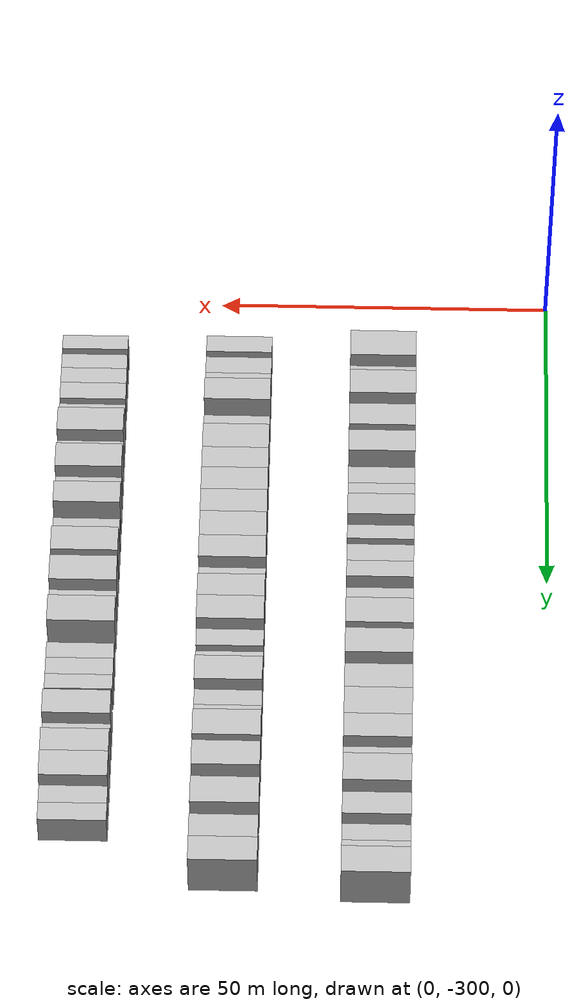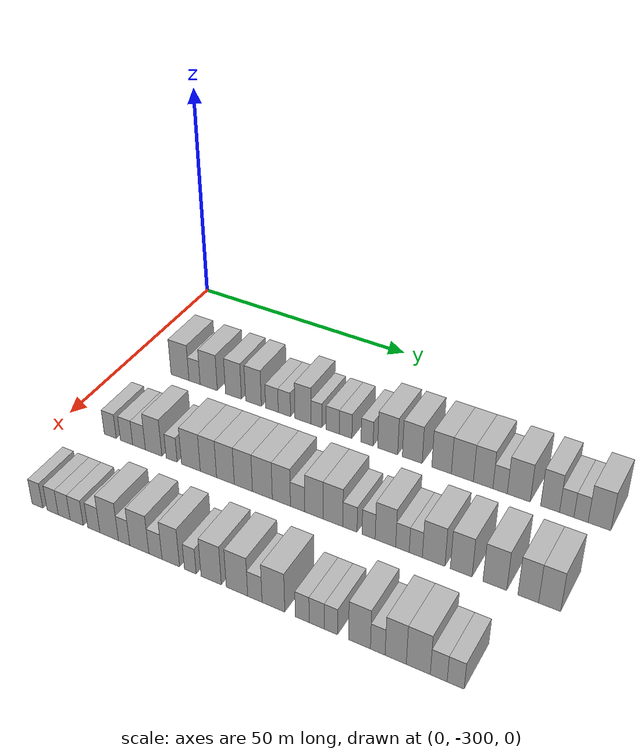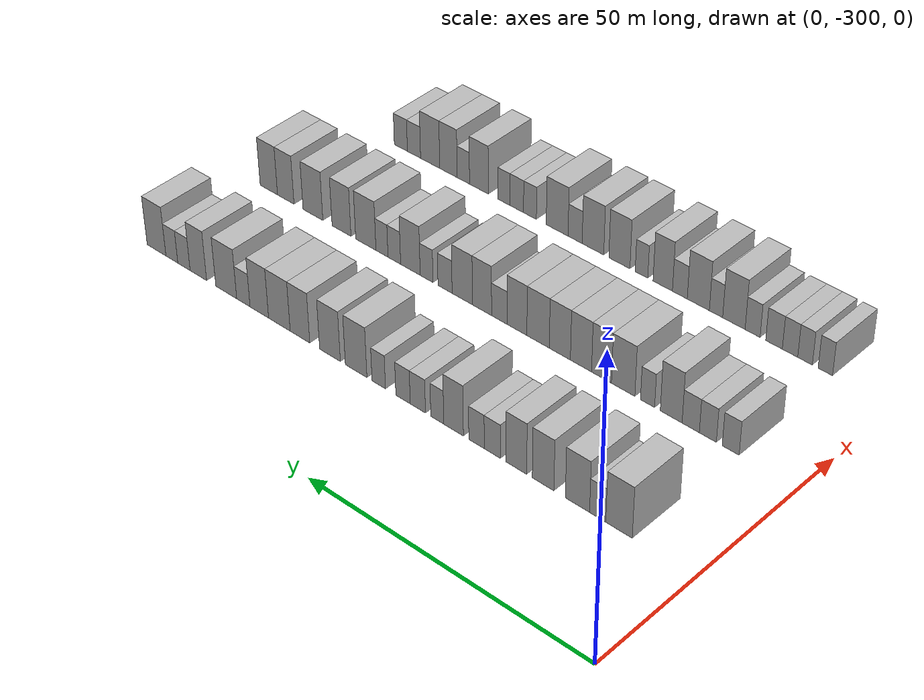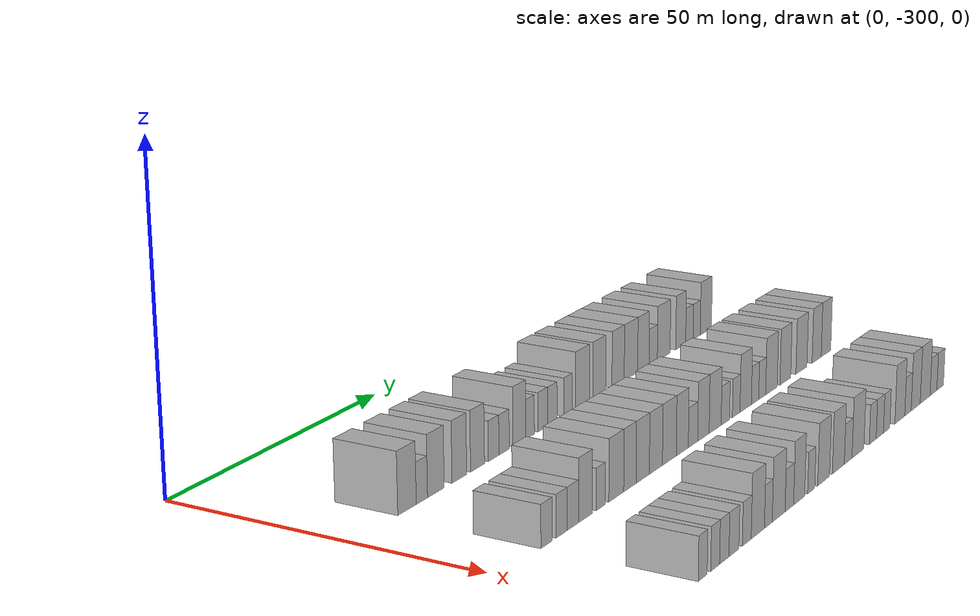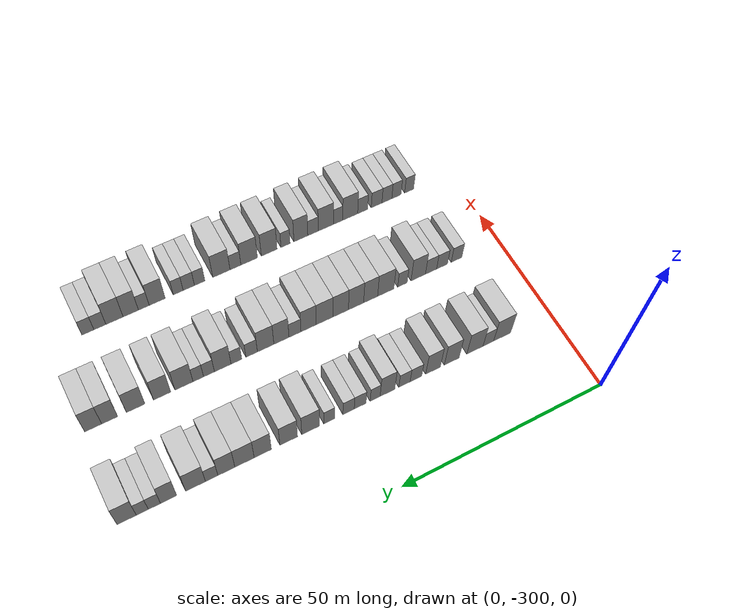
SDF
<sdf version="1.6">
 <world name="default">
  <model name="building_23">
   <static>1</static>
   <pose>25.0000 -287.2162 0 0.000000 0.000000 0.000000</pose>
   <link name="link">
    <pose>0 0 4.50 0 0 0</pose>
    <collision name="collision"><geometry><box><size>10.0000 4.4706 9.0000</size></box></geometry></collision>
    <visual name="visual">
     <cast_shadows>0</cast_shadows>
     <geometry><box><size>10.0000 4.4706 9.0000</size></box></geometry>
     <material>
      <script>
       <uri>model://HANNAS_wall/materials/scripts</uri>
       <uri>model://HANNAS_wall/materials/textures</uri>
       <name>vrc/HANNAS_wall</name>
      </script>
     </material>
    </visual>
   </link>
  </model>
  <model name="building_24">
   <static>1</static>
   <pose>25.0000 -283.5953 0 0.000000 0.000000 0.000000</pose>
   <link name="link">
    <pose>0 0 3.00 0 0 0</pose>
    <collision name="collision"><geometry><box><size>10.0000 2.7713 6.0000</size></box></geometry></collision>
    <visual name="visual">
     <cast_shadows>0</cast_shadows>
     <geometry><box><size>10.0000 2.7713 6.0000</size></box></geometry>
     <material>
      <script>
       <uri>model://HANNAS_wall/materials/scripts</uri>
       <uri>model://HANNAS_wall/materials/textures</uri>
       <name>vrc/HANNAS_wall</name>
      </script>
     </material>
    </visual>
   </link>
  </model>
  <model name="building_25">
   <static>1</static>
   <pose>25.0000 -280.1155 0 0.000000 0.000000 0.000000</pose>
   <link name="link">
    <pose>0 0 4.50 0 0 0</pose>
    <collision name="collision"><geometry><box><size>10.0000 4.1884 9.0000</size></box></geometry></collision>
    <visual name="visual">
     <cast_shadows>0</cast_shadows>
     <geometry><box><size>10.0000 4.1884 9.0000</size></box></geometry>
     <material>
      <script>
       <uri>model://HANNAS_wall/materials/scripts</uri>
       <uri>model://HANNAS_wall/materials/textures</uri>
       <name>vrc/HANNAS_wall</name>
      </script>
     </material>
    </visual>
   </link>
  </model>
  <model name="building_26">
   <static>1</static>
   <pose>25.0000 -274.1162 0 0.000000 0.000000 0.000000</pose>
   <link name="link">
    <pose>0 0 4.50 0 0 0</pose>
    <collision name="collision"><geometry><box><size>10.0000 3.8103 9.0000</size></box></geometry></collision>
    <visual name="visual">
     <cast_shadows>0</cast_shadows>
     <geometry><box><size>10.0000 3.8103 9.0000</size></box></geometry>
     <material>
      <script>
       <uri>model://HANNAS_wall/materials/scripts</uri>
       <uri>model://HANNAS_wall/materials/textures</uri>
       <name>vrc/HANNAS_wall</name>
      </script>
     </material>
    </visual>
   </link>
  </model>
  <model name="building_27">
   <static>1</static>
   <pose>25.0000 -269.3501 0 0.000000 0.000000 0.000000</pose>
   <link name="link">
    <pose>0 0 4.50 0 0 0</pose>
    <collision name="collision"><geometry><box><size>10.0000 3.7218 9.0000</size></box></geometry></collision>
    <visual name="visual">
     <cast_shadows>0</cast_shadows>
     <geometry><box><size>10.0000 3.7218 9.0000</size></box></geometry>
     <material>
      <script>
       <uri>model://HANNAS_wall/materials/scripts</uri>
       <uri>model://HANNAS_wall/materials/textures</uri>
       <name>vrc/HANNAS_wall</name>
      </script>
     </material>
    </visual>
   </link>
  </model>
  <model name="building_28">
   <static>1</static>
   <pose>25.0000 -265.0193 0 0.000000 0.000000 0.000000</pose>
   <link name="link">
    <pose>0 0 3.00 0 0 0</pose>
    <collision name="collision"><geometry><box><size>10.0000 2.9399 6.0000</size></box></geometry></collision>
    <visual name="visual">
     <cast_shadows>0</cast_shadows>
     <geometry><box><size>10.0000 2.9399 6.0000</size></box></geometry>
     <material>
      <script>
       <uri>model://HANNAS_wall/materials/scripts</uri>
       <uri>model://HANNAS_wall/materials/textures</uri>
       <name>vrc/HANNAS_wall</name>
      </script>
     </material>
    </visual>
   </link>
  </model>
  <model name="building_29">
   <static>1</static>
   <pose>25.0000 -262.1309 0 0.000000 0.000000 0.000000</pose>
   <link name="link">
    <pose>0 0 3.00 0 0 0</pose>
    <collision name="collision"><geometry><box><size>10.0000 2.8371 6.0000</size></box></geometry></collision>
    <visual name="visual">
     <cast_shadows>0</cast_shadows>
     <geometry><box><size>10.0000 2.8371 6.0000</size></box></geometry>
     <material>
      <script>
       <uri>model://HANNAS_wall/materials/scripts</uri>
       <uri>model://HANNAS_wall/materials/textures</uri>
       <name>vrc/HANNAS_wall</name>
      </script>
     </material>
    </visual>
   </link>
  </model>
  <model name="building_30">
   <static>1</static>
   <pose>25.0000 -257.8858 0 0.000000 0.000000 0.000000</pose>
   <link name="link">
    <pose>0 0 4.50 0 0 0</pose>
    <collision name="collision"><geometry><box><size>10.0000 3.6531 9.0000</size></box></geometry></collision>
    <visual name="visual">
     <cast_shadows>0</cast_shadows>
     <geometry><box><size>10.0000 3.6531 9.0000</size></box></geometry>
     <material>
      <script>
       <uri>model://HANNAS_wall/materials/scripts</uri>
       <uri>model://HANNAS_wall/materials/textures</uri>
       <name>vrc/HANNAS_wall</name>
      </script>
     </material>
    </visual>
   </link>
  </model>
  <model name="building_31">
   <static>1</static>
   <pose>25.0000 -254.8350 0 0.000000 0.000000 0.000000</pose>
   <link name="link">
    <pose>0 0 3.00 0 0 0</pose>
    <collision name="collision"><geometry><box><size>10.0000 2.4486 6.0000</size></box></geometry></collision>
    <visual name="visual">
     <cast_shadows>0</cast_shadows>
     <geometry><box><size>10.0000 2.4486 6.0000</size></box></geometry>
     <material>
      <script>
       <uri>model://HANNAS_wall/materials/scripts</uri>
       <uri>model://HANNAS_wall/materials/textures</uri>
       <name>vrc/HANNAS_wall</name>
      </script>
     </material>
    </visual>
   </link>
  </model>
  <model name="building_32">
   <static>1</static>
   <pose>25.0000 -251.1613 0 0.000000 0.000000 0.000000</pose>
   <link name="link">
    <pose>0 0 3.00 0 0 0</pose>
    <collision name="collision"><geometry><box><size>10.0000 2.8987 6.0000</size></box></geometry></collision>
    <visual name="visual">
     <cast_shadows>0</cast_shadows>
     <geometry><box><size>10.0000 2.8987 6.0000</size></box></geometry>
     <material>
      <script>
       <uri>model://HANNAS_wall/materials/scripts</uri>
       <uri>model://HANNAS_wall/materials/textures</uri>
       <name>vrc/HANNAS_wall</name>
      </script>
     </material>
    </visual>
   </link>
  </model>
  <model name="building_33">
   <static>1</static>
   <pose>25.0000 -248.3260 0 0.000000 0.000000 0.000000</pose>
   <link name="link">
    <pose>0 0 3.00 0 0 0</pose>
    <collision name="collision"><geometry><box><size>10.0000 2.7719 6.0000</size></box></geometry></collision>
    <visual name="visual">
     <cast_shadows>0</cast_shadows>
     <geometry><box><size>10.0000 2.7719 6.0000</size></box></geometry>
     <material>
      <script>
       <uri>model://HANNAS_wall/materials/scripts</uri>
       <uri>model://HANNAS_wall/materials/textures</uri>
       <name>vrc/HANNAS_wall</name>
      </script>
     </material>
    </visual>
   </link>
  </model>
  <model name="building_34">
   <static>1</static>
   <pose>25.0000 -243.6265 0 0.000000 0.000000 0.000000</pose>
   <link name="link">
    <pose>0 0 3.00 0 0 0</pose>
    <collision name="collision"><geometry><box><size>10.0000 2.6273 6.0000</size></box></geometry></collision>
    <visual name="visual">
     <cast_shadows>0</cast_shadows>
     <geometry><box><size>10.0000 2.6273 6.0000</size></box></geometry>
     <material>
      <script>
       <uri>model://HANNAS_wall/materials/scripts</uri>
       <uri>model://HANNAS_wall/materials/textures</uri>
       <name>vrc/HANNAS_wall</name>
      </script>
     </material>
    </visual>
   </link>
  </model>
  <model name="building_35">
   <static>1</static>
   <pose>25.0000 -239.1774 0 0.000000 0.000000 0.000000</pose>
   <link name="link">
    <pose>0 0 4.50 0 0 0</pose>
    <collision name="collision"><geometry><box><size>10.0000 4.2708 9.0000</size></box></geometry></collision>
    <visual name="visual">
     <cast_shadows>0</cast_shadows>
     <geometry><box><size>10.0000 4.2708 9.0000</size></box></geometry>
     <material>
      <script>
       <uri>model://HANNAS_wall/materials/scripts</uri>
       <uri>model://HANNAS_wall/materials/textures</uri>
       <name>vrc/HANNAS_wall</name>
      </script>
     </material>
    </visual>
   </link>
  </model>
  <model name="building_36">
   <static>1</static>
   <pose>25.0000 -233.9586 0 0.000000 0.000000 0.000000</pose>
   <link name="link">
    <pose>0 0 4.50 0 0 0</pose>
    <collision name="collision"><geometry><box><size>10.0000 4.1669 9.0000</size></box></geometry></collision>
    <visual name="visual">
     <cast_shadows>0</cast_shadows>
     <geometry><box><size>10.0000 4.1669 9.0000</size></box></geometry>
     <material>
      <script>
       <uri>model://HANNAS_wall/materials/scripts</uri>
       <uri>model://HANNAS_wall/materials/textures</uri>
       <name>vrc/HANNAS_wall</name>
      </script>
     </material>
    </visual>
   </link>
  </model>
  <model name="building_37">
   <static>1</static>
   <pose>25.0000 -227.8660 0 0.000000 0.000000 0.000000</pose>
   <link name="link">
    <pose>0 0 4.50 0 0 0</pose>
    <collision name="collision"><geometry><box><size>10.0000 4.0181 9.0000</size></box></geometry></collision>
    <visual name="visual">
     <cast_shadows>0</cast_shadows>
     <geometry><box><size>10.0000 4.0181 9.0000</size></box></geometry>
     <material>
      <script>
       <uri>model://HANNAS_wall/materials/scripts</uri>
       <uri>model://HANNAS_wall/materials/textures</uri>
       <name>vrc/HANNAS_wall</name>
      </script>
     </material>
    </visual>
   </link>
  </model>
  <model name="building_38">
   <static>1</static>
   <pose>25.0000 -223.6124 0 0.000000 0.000000 0.000000</pose>
   <link name="link">
    <pose>0 0 4.50 0 0 0</pose>
    <collision name="collision"><geometry><box><size>10.0000 4.4892 9.0000</size></box></geometry></collision>
    <visual name="visual">
     <cast_shadows>0</cast_shadows>
     <geometry><box><size>10.0000 4.4892 9.0000</size></box></geometry>
     <material>
      <script>
       <uri>model://HANNAS_wall/materials/scripts</uri>
       <uri>model://HANNAS_wall/materials/textures</uri>
       <name>vrc/HANNAS_wall</name>
      </script>
     </material>
    </visual>
   </link>
  </model>
  <model name="building_39">
   <static>1</static>
   <pose>25.0000 -219.4153 0 0.000000 0.000000 0.000000</pose>
   <link name="link">
    <pose>0 0 4.50 0 0 0</pose>
    <collision name="collision"><geometry><box><size>10.0000 3.9049 9.0000</size></box></geometry></collision>
    <visual name="visual">
     <cast_shadows>0</cast_shadows>
     <geometry><box><size>10.0000 3.9049 9.0000</size></box></geometry>
     <material>
      <script>
       <uri>model://HANNAS_wall/materials/scripts</uri>
       <uri>model://HANNAS_wall/materials/textures</uri>
       <name>vrc/HANNAS_wall</name>
      </script>
     </material>
    </visual>
   </link>
  </model>
  <model name="building_40">
   <static>1</static>
   <pose>25.0000 -216.0444 0 0.000000 0.000000 0.000000</pose>
   <link name="link">
    <pose>0 0 3.00 0 0 0</pose>
    <collision name="collision"><geometry><box><size>10.0000 2.8369 6.0000</size></box></geometry></collision>
    <visual name="visual">
     <cast_shadows>0</cast_shadows>
     <geometry><box><size>10.0000 2.8369 6.0000</size></box></geometry>
     <material>
      <script>
       <uri>model://HANNAS_wall/materials/scripts</uri>
       <uri>model://HANNAS_wall/materials/textures</uri>
       <name>vrc/HANNAS_wall</name>
      </script>
     </material>
    </visual>
   </link>
  </model>
  <model name="building_41">
   <static>1</static>
   <pose>25.0000 -212.3795 0 0.000000 0.000000 0.000000</pose>
   <link name="link">
    <pose>0 0 4.50 0 0 0</pose>
    <collision name="collision"><geometry><box><size>10.0000 4.4929 9.0000</size></box></geometry></collision>
    <visual name="visual">
     <cast_shadows>0</cast_shadows>
     <geometry><box><size>10.0000 4.4929 9.0000</size></box></geometry>
     <material>
      <script>
       <uri>model://HANNAS_wall/materials/scripts</uri>
       <uri>model://HANNAS_wall/materials/textures</uri>
       <name>vrc/HANNAS_wall</name>
      </script>
     </material>
    </visual>
   </link>
  </model>
  <model name="building_42">
   <static>1</static>
   <pose>25.0000 -206.3270 0 0.000000 0.000000 0.000000</pose>
   <link name="link">
    <pose>0 0 4.50 0 0 0</pose>
    <collision name="collision"><geometry><box><size>10.0000 3.6121 9.0000</size></box></geometry></collision>
    <visual name="visual">
     <cast_shadows>0</cast_shadows>
     <geometry><box><size>10.0000 3.6121 9.0000</size></box></geometry>
     <material>
      <script>
       <uri>model://HANNAS_wall/materials/scripts</uri>
       <uri>model://HANNAS_wall/materials/textures</uri>
       <name>vrc/HANNAS_wall</name>
      </script>
     </material>
    </visual>
   </link>
  </model>
  <model name="building_43">
   <static>1</static>
   <pose>25.0000 -203.1630 0 0.000000 0.000000 0.000000</pose>
   <link name="link">
    <pose>0 0 3.00 0 0 0</pose>
    <collision name="collision"><geometry><box><size>10.0000 2.7160 6.0000</size></box></geometry></collision>
    <visual name="visual">
     <cast_shadows>0</cast_shadows>
     <geometry><box><size>10.0000 2.7160 6.0000</size></box></geometry>
     <material>
      <script>
       <uri>model://HANNAS_wall/materials/scripts</uri>
       <uri>model://HANNAS_wall/materials/textures</uri>
       <name>vrc/HANNAS_wall</name>
      </script>
     </material>
    </visual>
   </link>
  </model>
  <model name="building_44">
   <static>1</static>
   <pose>25.0000 -200.4754 0 0.000000 0.000000 0.000000</pose>
   <link name="link">
    <pose>0 0 3.00 0 0 0</pose>
    <collision name="collision"><geometry><box><size>10.0000 2.6592 6.0000</size></box></geometry></collision>
    <visual name="visual">
     <cast_shadows>0</cast_shadows>
     <geometry><box><size>10.0000 2.6592 6.0000</size></box></geometry>
     <material>
      <script>
       <uri>model://HANNAS_wall/materials/scripts</uri>
       <uri>model://HANNAS_wall/materials/textures</uri>
       <name>vrc/HANNAS_wall</name>
      </script>
     </material>
    </visual>
   </link>
  </model>
  <model name="building_45">
   <static>1</static>
   <pose>25.0000 -197.0374 0 0.000000 0.000000 0.000000</pose>
   <link name="link">
    <pose>0 0 4.50 0 0 0</pose>
    <collision name="collision"><geometry><box><size>10.0000 4.2169 9.0000</size></box></geometry></collision>
    <visual name="visual">
     <cast_shadows>0</cast_shadows>
     <geometry><box><size>10.0000 4.2169 9.0000</size></box></geometry>
     <material>
      <script>
       <uri>model://HANNAS_wall/materials/scripts</uri>
       <uri>model://HANNAS_wall/materials/textures</uri>
       <name>vrc/HANNAS_wall</name>
      </script>
     </material>
    </visual>
   </link>
  </model>
  <model name="building_207">
   <static>1</static>
   <pose>47.0000 -288.6306 0 0.000000 0.000000 0.000000</pose>
   <link name="link">
    <pose>0 0 3.00 0 0 0</pose>
    <collision name="collision"><geometry><box><size>10.0000 2.8771 6.0000</size></box></geometry></collision>
    <visual name="visual">
     <cast_shadows>0</cast_shadows>
     <geometry><box><size>10.0000 2.8771 6.0000</size></box></geometry>
     <material>
      <script>
       <uri>model://HANNAS_wall/materials/scripts</uri>
       <uri>model://HANNAS_wall/materials/textures</uri>
       <name>vrc/HANNAS_wall</name>
      </script>
     </material>
    </visual>
   </link>
  </model>
  <model name="building_208">
   <static>1</static>
   <pose>47.0000 -284.7223 0 0.000000 0.000000 0.000000</pose>
   <link name="link">
    <pose>0 0 3.00 0 0 0</pose>
    <collision name="collision"><geometry><box><size>10.0000 2.9393 6.0000</size></box></geometry></collision>
    <visual name="visual">
     <cast_shadows>0</cast_shadows>
     <geometry><box><size>10.0000 2.9393 6.0000</size></box></geometry>
     <material>
      <script>
       <uri>model://HANNAS_wall/materials/scripts</uri>
       <uri>model://HANNAS_wall/materials/textures</uri>
       <name>vrc/HANNAS_wall</name>
      </script>
     </material>
    </visual>
   </link>
  </model>
  <model name="building_209">
   <static>1</static>
   <pose>47.0000 -281.7558 0 0.000000 0.000000 0.000000</pose>
   <link name="link">
    <pose>0 0 3.00 0 0 0</pose>
    <collision name="collision"><geometry><box><size>10.0000 2.9937 6.0000</size></box></geometry></collision>
    <visual name="visual">
     <cast_shadows>0</cast_shadows>
     <geometry><box><size>10.0000 2.9937 6.0000</size></box></geometry>
     <material>
      <script>
       <uri>model://HANNAS_wall/materials/scripts</uri>
       <uri>model://HANNAS_wall/materials/textures</uri>
       <name>vrc/HANNAS_wall</name>
      </script>
     </material>
    </visual>
   </link>
  </model>
  <model name="building_210">
   <static>1</static>
   <pose>47.0000 -278.3389 0 0.000000 0.000000 0.000000</pose>
   <link name="link">
    <pose>0 0 4.50 0 0 0</pose>
    <collision name="collision"><geometry><box><size>10.0000 3.8402 9.0000</size></box></geometry></collision>
    <visual name="visual">
     <cast_shadows>0</cast_shadows>
     <geometry><box><size>10.0000 3.8402 9.0000</size></box></geometry>
     <material>
      <script>
       <uri>model://HANNAS_wall/materials/scripts</uri>
       <uri>model://HANNAS_wall/materials/textures</uri>
       <name>vrc/HANNAS_wall</name>
      </script>
     </material>
    </visual>
   </link>
  </model>
  <model name="building_211">
   <static>1</static>
   <pose>47.0000 -274.1575 0 0.000000 0.000000 0.000000</pose>
   <link name="link">
    <pose>0 0 3.00 0 0 0</pose>
    <collision name="collision"><geometry><box><size>10.0000 2.5226 6.0000</size></box></geometry></collision>
    <visual name="visual">
     <cast_shadows>0</cast_shadows>
     <geometry><box><size>10.0000 2.5226 6.0000</size></box></geometry>
     <material>
      <script>
       <uri>model://HANNAS_wall/materials/scripts</uri>
       <uri>model://HANNAS_wall/materials/textures</uri>
       <name>vrc/HANNAS_wall</name>
      </script>
     </material>
    </visual>
   </link>
  </model>
  <model name="building_212">
   <static>1</static>
   <pose>47.0000 -269.7729 0 0.000000 0.000000 0.000000</pose>
   <link name="link">
    <pose>0 0 4.50 0 0 0</pose>
    <collision name="collision"><geometry><box><size>10.0000 4.2466 9.0000</size></box></geometry></collision>
    <visual name="visual">
     <cast_shadows>0</cast_shadows>
     <geometry><box><size>10.0000 4.2466 9.0000</size></box></geometry>
     <material>
      <script>
       <uri>model://HANNAS_wall/materials/scripts</uri>
       <uri>model://HANNAS_wall/materials/textures</uri>
       <name>vrc/HANNAS_wall</name>
      </script>
     </material>
    </visual>
   </link>
  </model>
  <model name="building_213">
   <static>1</static>
   <pose>47.0000 -265.8318 0 0.000000 0.000000 0.000000</pose>
   <link name="link">
    <pose>0 0 4.50 0 0 0</pose>
    <collision name="collision"><geometry><box><size>10.0000 3.6357 9.0000</size></box></geometry></collision>
    <visual name="visual">
     <cast_shadows>0</cast_shadows>
     <geometry><box><size>10.0000 3.6357 9.0000</size></box></geometry>
     <material>
      <script>
       <uri>model://HANNAS_wall/materials/scripts</uri>
       <uri>model://HANNAS_wall/materials/textures</uri>
       <name>vrc/HANNAS_wall</name>
      </script>
     </material>
    </visual>
   </link>
  </model>
  <model name="building_214">
   <static>1</static>
   <pose>47.0000 -262.0541 0 0.000000 0.000000 0.000000</pose>
   <link name="link">
    <pose>0 0 4.50 0 0 0</pose>
    <collision name="collision"><geometry><box><size>10.0000 3.9198 9.0000</size></box></geometry></collision>
    <visual name="visual">
     <cast_shadows>0</cast_shadows>
     <geometry><box><size>10.0000 3.9198 9.0000</size></box></geometry>
     <material>
      <script>
       <uri>model://HANNAS_wall/materials/scripts</uri>
       <uri>model://HANNAS_wall/materials/textures</uri>
       <name>vrc/HANNAS_wall</name>
      </script>
     </material>
    </visual>
   </link>
  </model>
  <model name="building_215">
   <static>1</static>
   <pose>47.0000 -258.1147 0 0.000000 0.000000 0.000000</pose>
   <link name="link">
    <pose>0 0 4.50 0 0 0</pose>
    <collision name="collision"><geometry><box><size>10.0000 3.9590 9.0000</size></box></geometry></collision>
    <visual name="visual">
     <cast_shadows>0</cast_shadows>
     <geometry><box><size>10.0000 3.9590 9.0000</size></box></geometry>
     <material>
      <script>
       <uri>model://HANNAS_wall/materials/scripts</uri>
       <uri>model://HANNAS_wall/materials/textures</uri>
       <name>vrc/HANNAS_wall</name>
      </script>
     </material>
    </visual>
   </link>
  </model>
  <model name="building_216">
   <static>1</static>
   <pose>47.0000 -254.0021 0 0.000000 0.000000 0.000000</pose>
   <link name="link">
    <pose>0 0 4.50 0 0 0</pose>
    <collision name="collision"><geometry><box><size>10.0000 4.2663 9.0000</size></box></geometry></collision>
    <visual name="visual">
     <cast_shadows>0</cast_shadows>
     <geometry><box><size>10.0000 4.2663 9.0000</size></box></geometry>
     <material>
      <script>
       <uri>model://HANNAS_wall/materials/scripts</uri>
       <uri>model://HANNAS_wall/materials/textures</uri>
       <name>vrc/HANNAS_wall</name>
      </script>
     </material>
    </visual>
   </link>
  </model>
  <model name="building_217">
   <static>1</static>
   <pose>47.0000 -249.9526 0 0.000000 0.000000 0.000000</pose>
   <link name="link">
    <pose>0 0 4.50 0 0 0</pose>
    <collision name="collision"><geometry><box><size>10.0000 3.8326 9.0000</size></box></geometry></collision>
    <visual name="visual">
     <cast_shadows>0</cast_shadows>
     <geometry><box><size>10.0000 3.8326 9.0000</size></box></geometry>
     <material>
      <script>
       <uri>model://HANNAS_wall/materials/scripts</uri>
       <uri>model://HANNAS_wall/materials/textures</uri>
       <name>vrc/HANNAS_wall</name>
      </script>
     </material>
    </visual>
   </link>
  </model>
  <model name="building_218">
   <static>1</static>
   <pose>47.0000 -246.5391 0 0.000000 0.000000 0.000000</pose>
   <link name="link">
    <pose>0 0 3.00 0 0 0</pose>
    <collision name="collision"><geometry><box><size>10.0000 2.9944 6.0000</size></box></geometry></collision>
    <visual name="visual">
     <cast_shadows>0</cast_shadows>
     <geometry><box><size>10.0000 2.9944 6.0000</size></box></geometry>
     <material>
      <script>
       <uri>model://HANNAS_wall/materials/scripts</uri>
       <uri>model://HANNAS_wall/materials/textures</uri>
       <name>vrc/HANNAS_wall</name>
      </script>
     </material>
    </visual>
   </link>
  </model>
  <model name="building_219">
   <static>1</static>
   <pose>47.0000 -243.1662 0 0.000000 0.000000 0.000000</pose>
   <link name="link">
    <pose>0 0 4.50 0 0 0</pose>
    <collision name="collision"><geometry><box><size>10.0000 3.7514 9.0000</size></box></geometry></collision>
    <visual name="visual">
     <cast_shadows>0</cast_shadows>
     <geometry><box><size>10.0000 3.7514 9.0000</size></box></geometry>
     <material>
      <script>
       <uri>model://HANNAS_wall/materials/scripts</uri>
       <uri>model://HANNAS_wall/materials/textures</uri>
       <name>vrc/HANNAS_wall</name>
      </script>
     </material>
    </visual>
   </link>
  </model>
  <model name="building_220">
   <static>1</static>
   <pose>47.0000 -239.2657 0 0.000000 0.000000 0.000000</pose>
   <link name="link">
    <pose>0 0 4.50 0 0 0</pose>
    <collision name="collision"><geometry><box><size>10.0000 4.0497 9.0000</size></box></geometry></collision>
    <visual name="visual">
     <cast_shadows>0</cast_shadows>
     <geometry><box><size>10.0000 4.0497 9.0000</size></box></geometry>
     <material>
      <script>
       <uri>model://HANNAS_wall/materials/scripts</uri>
       <uri>model://HANNAS_wall/materials/textures</uri>
       <name>vrc/HANNAS_wall</name>
      </script>
     </material>
    </visual>
   </link>
  </model>
  <model name="building_221">
   <static>1</static>
   <pose>47.0000 -235.8204 0 0.000000 0.000000 0.000000</pose>
   <link name="link">
    <pose>0 0 3.00 0 0 0</pose>
    <collision name="collision"><geometry><box><size>10.0000 2.8408 6.0000</size></box></geometry></collision>
    <visual name="visual">
     <cast_shadows>0</cast_shadows>
     <geometry><box><size>10.0000 2.8408 6.0000</size></box></geometry>
     <material>
      <script>
       <uri>model://HANNAS_wall/materials/scripts</uri>
       <uri>model://HANNAS_wall/materials/textures</uri>
       <name>vrc/HANNAS_wall</name>
      </script>
     </material>
    </visual>
   </link>
  </model>
  <model name="building_222">
   <static>1</static>
   <pose>47.0000 -232.0952 0 0.000000 0.000000 0.000000</pose>
   <link name="link">
    <pose>0 0 3.00 0 0 0</pose>
    <collision name="collision"><geometry><box><size>10.0000 2.6096 6.0000</size></box></geometry></collision>
    <visual name="visual">
     <cast_shadows>0</cast_shadows>
     <geometry><box><size>10.0000 2.6096 6.0000</size></box></geometry>
     <material>
      <script>
       <uri>model://HANNAS_wall/materials/scripts</uri>
       <uri>model://HANNAS_wall/materials/textures</uri>
       <name>vrc/HANNAS_wall</name>
      </script>
     </material>
    </visual>
   </link>
  </model>
  <model name="building_223">
   <static>1</static>
   <pose>47.0000 -228.7833 0 0.000000 0.000000 0.000000</pose>
   <link name="link">
    <pose>0 0 4.50 0 0 0</pose>
    <collision name="collision"><geometry><box><size>10.0000 4.0142 9.0000</size></box></geometry></collision>
    <visual name="visual">
     <cast_shadows>0</cast_shadows>
     <geometry><box><size>10.0000 4.0142 9.0000</size></box></geometry>
     <material>
      <script>
       <uri>model://HANNAS_wall/materials/scripts</uri>
       <uri>model://HANNAS_wall/materials/textures</uri>
       <name>vrc/HANNAS_wall</name>
      </script>
     </material>
    </visual>
   </link>
  </model>
  <model name="building_224">
   <static>1</static>
   <pose>47.0000 -225.4650 0 0.000000 0.000000 0.000000</pose>
   <link name="link">
    <pose>0 0 3.00 0 0 0</pose>
    <collision name="collision"><geometry><box><size>10.0000 2.6224 6.0000</size></box></geometry></collision>
    <visual name="visual">
     <cast_shadows>0</cast_shadows>
     <geometry><box><size>10.0000 2.6224 6.0000</size></box></geometry>
     <material>
      <script>
       <uri>model://HANNAS_wall/materials/scripts</uri>
       <uri>model://HANNAS_wall/materials/textures</uri>
       <name>vrc/HANNAS_wall</name>
      </script>
     </material>
    </visual>
   </link>
  </model>
  <model name="building_225">
   <static>1</static>
   <pose>47.0000 -222.8946 0 0.000000 0.000000 0.000000</pose>
   <link name="link">
    <pose>0 0 3.00 0 0 0</pose>
    <collision name="collision"><geometry><box><size>10.0000 2.5184 6.0000</size></box></geometry></collision>
    <visual name="visual">
     <cast_shadows>0</cast_shadows>
     <geometry><box><size>10.0000 2.5184 6.0000</size></box></geometry>
     <material>
      <script>
       <uri>model://HANNAS_wall/materials/scripts</uri>
       <uri>model://HANNAS_wall/materials/textures</uri>
       <name>vrc/HANNAS_wall</name>
      </script>
     </material>
    </visual>
   </link>
  </model>
  <model name="building_226">
   <static>1</static>
   <pose>47.0000 -219.4951 0 0.000000 0.000000 0.000000</pose>
   <link name="link">
    <pose>0 0 4.50 0 0 0</pose>
    <collision name="collision"><geometry><box><size>10.0000 4.2806 9.0000</size></box></geometry></collision>
    <visual name="visual">
     <cast_shadows>0</cast_shadows>
     <geometry><box><size>10.0000 4.2806 9.0000</size></box></geometry>
     <material>
      <script>
       <uri>model://HANNAS_wall/materials/scripts</uri>
       <uri>model://HANNAS_wall/materials/textures</uri>
       <name>vrc/HANNAS_wall</name>
      </script>
     </material>
    </visual>
   </link>
  </model>
  <model name="building_227">
   <static>1</static>
   <pose>47.0000 -214.3275 0 0.000000 0.000000 0.000000</pose>
   <link name="link">
    <pose>0 0 4.50 0 0 0</pose>
    <collision name="collision"><geometry><box><size>10.0000 4.0547 9.0000</size></box></geometry></collision>
    <visual name="visual">
     <cast_shadows>0</cast_shadows>
     <geometry><box><size>10.0000 4.0547 9.0000</size></box></geometry>
     <material>
      <script>
       <uri>model://HANNAS_wall/materials/scripts</uri>
       <uri>model://HANNAS_wall/materials/textures</uri>
       <name>vrc/HANNAS_wall</name>
      </script>
     </material>
    </visual>
   </link>
  </model>
  <model name="building_228">
   <static>1</static>
   <pose>47.0000 -208.1423 0 0.000000 0.000000 0.000000</pose>
   <link name="link">
    <pose>0 0 4.50 0 0 0</pose>
    <collision name="collision"><geometry><box><size>10.0000 4.3156 9.0000</size></box></geometry></collision>
    <visual name="visual">
     <cast_shadows>0</cast_shadows>
     <geometry><box><size>10.0000 4.3156 9.0000</size></box></geometry>
     <material>
      <script>
       <uri>model://HANNAS_wall/materials/scripts</uri>
       <uri>model://HANNAS_wall/materials/textures</uri>
       <name>vrc/HANNAS_wall</name>
      </script>
     </material>
    </visual>
   </link>
  </model>
  <model name="building_229">
   <static>1</static>
   <pose>47.0000 -202.1530 0 0.000000 0.000000 0.000000</pose>
   <link name="link">
    <pose>0 0 4.50 0 0 0</pose>
    <collision name="collision"><geometry><box><size>10.0000 3.6630 9.0000</size></box></geometry></collision>
    <visual name="visual">
     <cast_shadows>0</cast_shadows>
     <geometry><box><size>10.0000 3.6630 9.0000</size></box></geometry>
     <material>
      <script>
       <uri>model://HANNAS_wall/materials/scripts</uri>
       <uri>model://HANNAS_wall/materials/textures</uri>
       <name>vrc/HANNAS_wall</name>
      </script>
     </material>
    </visual>
   </link>
  </model>
  <model name="building_230">
   <static>1</static>
   <pose>47.0000 -198.3815 0 0.000000 0.000000 0.000000</pose>
   <link name="link">
    <pose>0 0 4.50 0 0 0</pose>
    <collision name="collision"><geometry><box><size>10.0000 3.8798 9.0000</size></box></geometry></collision>
    <visual name="visual">
     <cast_shadows>0</cast_shadows>
     <geometry><box><size>10.0000 3.8798 9.0000</size></box></geometry>
     <material>
      <script>
       <uri>model://HANNAS_wall/materials/scripts</uri>
       <uri>model://HANNAS_wall/materials/textures</uri>
       <name>vrc/HANNAS_wall</name>
      </script>
     </material>
    </visual>
   </link>
  </model>
  <model name="building_397">
   <static>1</static>
   <pose>69.0000 -288.5322 0 0.000000 0.000000 0.000000</pose>
   <link name="link">
    <pose>0 0 3.00 0 0 0</pose>
    <collision name="collision"><geometry><box><size>10.0000 2.4863 6.0000</size></box></geometry></collision>
    <visual name="visual">
     <cast_shadows>0</cast_shadows>
     <geometry><box><size>10.0000 2.4863 6.0000</size></box></geometry>
     <material>
      <script>
       <uri>model://HANNAS_wall/materials/scripts</uri>
       <uri>model://HANNAS_wall/materials/textures</uri>
       <name>vrc/HANNAS_wall</name>
      </script>
     </material>
    </visual>
   </link>
  </model>
  <model name="building_398">
   <static>1</static>
   <pose>69.0000 -285.0149 0 0.000000 0.000000 0.000000</pose>
   <link name="link">
    <pose>0 0 3.00 0 0 0</pose>
    <collision name="collision"><geometry><box><size>10.0000 2.5484 6.0000</size></box></geometry></collision>
    <visual name="visual">
     <cast_shadows>0</cast_shadows>
     <geometry><box><size>10.0000 2.5484 6.0000</size></box></geometry>
     <material>
      <script>
       <uri>model://HANNAS_wall/materials/scripts</uri>
       <uri>model://HANNAS_wall/materials/textures</uri>
       <name>vrc/HANNAS_wall</name>
      </script>
     </material>
    </visual>
   </link>
  </model>
  <model name="building_399">
   <static>1</static>
   <pose>69.0000 -282.3863 0 0.000000 0.000000 0.000000</pose>
   <link name="link">
    <pose>0 0 3.00 0 0 0</pose>
    <collision name="collision"><geometry><box><size>10.0000 2.7087 6.0000</size></box></geometry></collision>
    <visual name="visual">
     <cast_shadows>0</cast_shadows>
     <geometry><box><size>10.0000 2.7087 6.0000</size></box></geometry>
     <material>
      <script>
       <uri>model://HANNAS_wall/materials/scripts</uri>
       <uri>model://HANNAS_wall/materials/textures</uri>
       <name>vrc/HANNAS_wall</name>
      </script>
     </material>
    </visual>
   </link>
  </model>
  <model name="building_400">
   <static>1</static>
   <pose>69.0000 -279.5592 0 0.000000 0.000000 0.000000</pose>
   <link name="link">
    <pose>0 0 3.00 0 0 0</pose>
    <collision name="collision"><geometry><box><size>10.0000 2.9456 6.0000</size></box></geometry></collision>
    <visual name="visual">
     <cast_shadows>0</cast_shadows>
     <geometry><box><size>10.0000 2.9456 6.0000</size></box></geometry>
     <material>
      <script>
       <uri>model://HANNAS_wall/materials/scripts</uri>
       <uri>model://HANNAS_wall/materials/textures</uri>
       <name>vrc/HANNAS_wall</name>
      </script>
     </material>
    </visual>
   </link>
  </model>
  <model name="building_401">
   <static>1</static>
   <pose>69.0000 -275.7413 0 0.000000 0.000000 0.000000</pose>
   <link name="link">
    <pose>0 0 3.00 0 0 0</pose>
    <collision name="collision"><geometry><box><size>10.0000 2.6902 6.0000</size></box></geometry></collision>
    <visual name="visual">
     <cast_shadows>0</cast_shadows>
     <geometry><box><size>10.0000 2.6902 6.0000</size></box></geometry>
     <material>
      <script>
       <uri>model://HANNAS_wall/materials/scripts</uri>
       <uri>model://HANNAS_wall/materials/textures</uri>
       <name>vrc/HANNAS_wall</name>
      </script>
     </material>
    </visual>
   </link>
  </model>
  <model name="building_402">
   <static>1</static>
   <pose>69.0000 -272.3597 0 0.000000 0.000000 0.000000</pose>
   <link name="link">
    <pose>0 0 4.50 0 0 0</pose>
    <collision name="collision"><geometry><box><size>10.0000 4.0731 9.0000</size></box></geometry></collision>
    <visual name="visual">
     <cast_shadows>0</cast_shadows>
     <geometry><box><size>10.0000 4.0731 9.0000</size></box></geometry>
     <material>
      <script>
       <uri>model://HANNAS_wall/materials/scripts</uri>
       <uri>model://HANNAS_wall/materials/textures</uri>
       <name>vrc/HANNAS_wall</name>
      </script>
     </material>
    </visual>
   </link>
  </model>
  <model name="building_403">
   <static>1</static>
   <pose>69.0000 -269.1043 0 0.000000 0.000000 0.000000</pose>
   <link name="link">
    <pose>0 0 3.00 0 0 0</pose>
    <collision name="collision"><geometry><box><size>10.0000 2.4376 6.0000</size></box></geometry></collision>
    <visual name="visual">
     <cast_shadows>0</cast_shadows>
     <geometry><box><size>10.0000 2.4376 6.0000</size></box></geometry>
     <material>
      <script>
       <uri>model://HANNAS_wall/materials/scripts</uri>
       <uri>model://HANNAS_wall/materials/textures</uri>
       <name>vrc/HANNAS_wall</name>
      </script>
     </material>
    </visual>
   </link>
  </model>
  <model name="building_404">
   <static>1</static>
   <pose>69.0000 -265.8403 0 0.000000 0.000000 0.000000</pose>
   <link name="link">
    <pose>0 0 4.50 0 0 0</pose>
    <collision name="collision"><geometry><box><size>10.0000 4.0904 9.0000</size></box></geometry></collision>
    <visual name="visual">
     <cast_shadows>0</cast_shadows>
     <geometry><box><size>10.0000 4.0904 9.0000</size></box></geometry>
     <material>
      <script>
       <uri>model://HANNAS_wall/materials/scripts</uri>
       <uri>model://HANNAS_wall/materials/textures</uri>
       <name>vrc/HANNAS_wall</name>
      </script>
     </material>
    </visual>
   </link>
  </model>
  <model name="building_405">
   <static>1</static>
   <pose>69.0000 -262.4084 0 0.000000 0.000000 0.000000</pose>
   <link name="link">
    <pose>0 0 3.00 0 0 0</pose>
    <collision name="collision"><geometry><box><size>10.0000 2.7735 6.0000</size></box></geometry></collision>
    <visual name="visual">
     <cast_shadows>0</cast_shadows>
     <geometry><box><size>10.0000 2.7735 6.0000</size></box></geometry>
     <material>
      <script>
       <uri>model://HANNAS_wall/materials/scripts</uri>
       <uri>model://HANNAS_wall/materials/textures</uri>
       <name>vrc/HANNAS_wall</name>
      </script>
     </material>
    </visual>
   </link>
  </model>
  <model name="building_406">
   <static>1</static>
   <pose>69.0000 -259.1934 0 0.000000 0.000000 0.000000</pose>
   <link name="link">
    <pose>0 0 4.50 0 0 0</pose>
    <collision name="collision"><geometry><box><size>10.0000 3.6564 9.0000</size></box></geometry></collision>
    <visual name="visual">
     <cast_shadows>0</cast_shadows>
     <geometry><box><size>10.0000 3.6564 9.0000</size></box></geometry>
     <material>
      <script>
       <uri>model://HANNAS_wall/materials/scripts</uri>
       <uri>model://HANNAS_wall/materials/textures</uri>
       <name>vrc/HANNAS_wall</name>
      </script>
     </material>
    </visual>
   </link>
  </model>
  <model name="building_407">
   <static>1</static>
   <pose>69.0000 -255.1584 0 0.000000 0.000000 0.000000</pose>
   <link name="link">
    <pose>0 0 3.00 0 0 0</pose>
    <collision name="collision"><geometry><box><size>10.0000 2.4138 6.0000</size></box></geometry></collision>
    <visual name="visual">
     <cast_shadows>0</cast_shadows>
     <geometry><box><size>10.0000 2.4138 6.0000</size></box></geometry>
     <material>
      <script>
       <uri>model://HANNAS_wall/materials/scripts</uri>
       <uri>model://HANNAS_wall/materials/textures</uri>
       <name>vrc/HANNAS_wall</name>
      </script>
     </material>
    </visual>
   </link>
  </model>
  <model name="building_408">
   <static>1</static>
   <pose>69.0000 -250.9076 0 0.000000 0.000000 0.000000</pose>
   <link name="link">
    <pose>0 0 4.50 0 0 0</pose>
    <collision name="collision"><geometry><box><size>10.0000 4.0877 9.0000</size></box></geometry></collision>
    <visual name="visual">
     <cast_shadows>0</cast_shadows>
     <geometry><box><size>10.0000 4.0877 9.0000</size></box></geometry>
     <material>
      <script>
       <uri>model://HANNAS_wall/materials/scripts</uri>
       <uri>model://HANNAS_wall/materials/textures</uri>
       <name>vrc/HANNAS_wall</name>
      </script>
     </material>
    </visual>
   </link>
  </model>
  <model name="building_409">
   <static>1</static>
   <pose>69.0000 -245.7398 0 0.000000 0.000000 0.000000</pose>
   <link name="link">
    <pose>0 0 4.50 0 0 0</pose>
    <collision name="collision"><geometry><box><size>10.0000 4.2479 9.0000</size></box></geometry></collision>
    <visual name="visual">
     <cast_shadows>0</cast_shadows>
     <geometry><box><size>10.0000 4.2479 9.0000</size></box></geometry>
     <material>
      <script>
       <uri>model://HANNAS_wall/materials/scripts</uri>
       <uri>model://HANNAS_wall/materials/textures</uri>
       <name>vrc/HANNAS_wall</name>
      </script>
     </material>
    </visual>
   </link>
  </model>
  <model name="building_410">
   <static>1</static>
   <pose>69.0000 -242.2151 0 0.000000 0.000000 0.000000</pose>
   <link name="link">
    <pose>0 0 3.00 0 0 0</pose>
    <collision name="collision"><geometry><box><size>10.0000 2.8014 6.0000</size></box></geometry></collision>
    <visual name="visual">
     <cast_shadows>0</cast_shadows>
     <geometry><box><size>10.0000 2.8014 6.0000</size></box></geometry>
     <material>
      <script>
       <uri>model://HANNAS_wall/materials/scripts</uri>
       <uri>model://HANNAS_wall/materials/textures</uri>
       <name>vrc/HANNAS_wall</name>
      </script>
     </material>
    </visual>
   </link>
  </model>
  <model name="building_411">
   <static>1</static>
   <pose>69.0000 -238.6256 0 0.000000 0.000000 0.000000</pose>
   <link name="link">
    <pose>0 0 4.50 0 0 0</pose>
    <collision name="collision"><geometry><box><size>10.0000 4.3776 9.0000</size></box></geometry></collision>
    <visual name="visual">
     <cast_shadows>0</cast_shadows>
     <geometry><box><size>10.0000 4.3776 9.0000</size></box></geometry>
     <material>
      <script>
       <uri>model://HANNAS_wall/materials/scripts</uri>
       <uri>model://HANNAS_wall/materials/textures</uri>
       <name>vrc/HANNAS_wall</name>
      </script>
     </material>
    </visual>
   </link>
  </model>
  <model name="building_412">
   <static>1</static>
   <pose>69.0000 -233.1294 0 0.000000 0.000000 0.000000</pose>
   <link name="link">
    <pose>0 0 3.00 0 0 0</pose>
    <collision name="collision"><geometry><box><size>10.0000 2.6149 6.0000</size></box></geometry></collision>
    <visual name="visual">
     <cast_shadows>0</cast_shadows>
     <geometry><box><size>10.0000 2.6149 6.0000</size></box></geometry>
     <material>
      <script>
       <uri>model://HANNAS_wall/materials/scripts</uri>
       <uri>model://HANNAS_wall/materials/textures</uri>
       <name>vrc/HANNAS_wall</name>
      </script>
     </material>
    </visual>
   </link>
  </model>
  <model name="building_413">
   <static>1</static>
   <pose>69.0000 -230.4112 0 0.000000 0.000000 0.000000</pose>
   <link name="link">
    <pose>0 0 3.00 0 0 0</pose>
    <collision name="collision"><geometry><box><size>10.0000 2.8213 6.0000</size></box></geometry></collision>
    <visual name="visual">
     <cast_shadows>0</cast_shadows>
     <geometry><box><size>10.0000 2.8213 6.0000</size></box></geometry>
     <material>
      <script>
       <uri>model://HANNAS_wall/materials/scripts</uri>
       <uri>model://HANNAS_wall/materials/textures</uri>
       <name>vrc/HANNAS_wall</name>
      </script>
     </material>
    </visual>
   </link>
  </model>
  <model name="building_414">
   <static>1</static>
   <pose>69.0000 -227.7654 0 0.000000 0.000000 0.000000</pose>
   <link name="link">
    <pose>0 0 3.00 0 0 0</pose>
    <collision name="collision"><geometry><box><size>10.0000 2.4704 6.0000</size></box></geometry></collision>
    <visual name="visual">
     <cast_shadows>0</cast_shadows>
     <geometry><box><size>10.0000 2.4704 6.0000</size></box></geometry>
     <material>
      <script>
       <uri>model://HANNAS_wall/materials/scripts</uri>
       <uri>model://HANNAS_wall/materials/textures</uri>
       <name>vrc/HANNAS_wall</name>
      </script>
     </material>
    </visual>
   </link>
  </model>
  <model name="building_415">
   <static>1</static>
   <pose>69.0000 -222.5502 0 0.000000 0.000000 0.000000</pose>
   <link name="link">
    <pose>0 0 4.50 0 0 0</pose>
    <collision name="collision"><geometry><box><size>10.0000 3.9600 9.0000</size></box></geometry></collision>
    <visual name="visual">
     <cast_shadows>0</cast_shadows>
     <geometry><box><size>10.0000 3.9600 9.0000</size></box></geometry>
     <material>
      <script>
       <uri>model://HANNAS_wall/materials/scripts</uri>
       <uri>model://HANNAS_wall/materials/textures</uri>
       <name>vrc/HANNAS_wall</name>
      </script>
     </material>
    </visual>
   </link>
  </model>
  <model name="building_416">
   <static>1</static>
   <pose>69.0000 -219.2610 0 0.000000 0.000000 0.000000</pose>
   <link name="link">
    <pose>0 0 3.00 0 0 0</pose>
    <collision name="collision"><geometry><box><size>10.0000 2.6184 6.0000</size></box></geometry></collision>
    <visual name="visual">
     <cast_shadows>0</cast_shadows>
     <geometry><box><size>10.0000 2.6184 6.0000</size></box></geometry>
     <material>
      <script>
       <uri>model://HANNAS_wall/materials/scripts</uri>
       <uri>model://HANNAS_wall/materials/textures</uri>
       <name>vrc/HANNAS_wall</name>
      </script>
     </material>
    </visual>
   </link>
  </model>
  <model name="building_417">
   <static>1</static>
   <pose>69.0000 -216.0839 0 0.000000 0.000000 0.000000</pose>
   <link name="link">
    <pose>0 0 4.50 0 0 0</pose>
    <collision name="collision"><geometry><box><size>10.0000 3.7357 9.0000</size></box></geometry></collision>
    <visual name="visual">
     <cast_shadows>0</cast_shadows>
     <geometry><box><size>10.0000 3.7357 9.0000</size></box></geometry>
     <material>
      <script>
       <uri>model://HANNAS_wall/materials/scripts</uri>
       <uri>model://HANNAS_wall/materials/textures</uri>
       <name>vrc/HANNAS_wall</name>
      </script>
     </material>
    </visual>
   </link>
  </model>
  <model name="building_418">
   <static>1</static>
   <pose>69.0000 -212.1350 0 0.000000 0.000000 0.000000</pose>
   <link name="link">
    <pose>0 0 4.50 0 0 0</pose>
    <collision name="collision"><geometry><box><size>10.0000 4.1621 9.0000</size></box></geometry></collision>
    <visual name="visual">
     <cast_shadows>0</cast_shadows>
     <geometry><box><size>10.0000 4.1621 9.0000</size></box></geometry>
     <material>
      <script>
       <uri>model://HANNAS_wall/materials/scripts</uri>
       <uri>model://HANNAS_wall/materials/textures</uri>
       <name>vrc/HANNAS_wall</name>
      </script>
     </material>
    </visual>
   </link>
  </model>
  <model name="building_419">
   <static>1</static>
   <pose>69.0000 -208.6140 0 0.000000 0.000000 0.000000</pose>
   <link name="link">
    <pose>0 0 3.00 0 0 0</pose>
    <collision name="collision"><geometry><box><size>10.0000 2.8799 6.0000</size></box></geometry></collision>
    <visual name="visual">
     <cast_shadows>0</cast_shadows>
     <geometry><box><size>10.0000 2.8799 6.0000</size></box></geometry>
     <material>
      <script>
       <uri>model://HANNAS_wall/materials/scripts</uri>
       <uri>model://HANNAS_wall/materials/textures</uri>
       <name>vrc/HANNAS_wall</name>
      </script>
     </material>
    </visual>
   </link>
  </model>
  <model name="building_420">
   <static>1</static>
   <pose>69.0000 -205.7347 0 0.000000 0.000000 0.000000</pose>
   <link name="link">
    <pose>0 0 3.00 0 0 0</pose>
    <collision name="collision"><geometry><box><size>10.0000 2.8787 6.0000</size></box></geometry></collision>
    <visual name="visual">
     <cast_shadows>0</cast_shadows>
     <geometry><box><size>10.0000 2.8787 6.0000</size></box></geometry>
     <material>
      <script>
       <uri>model://HANNAS_wall/materials/scripts</uri>
       <uri>model://HANNAS_wall/materials/textures</uri>
       <name>vrc/HANNAS_wall</name>
      </script>
     </material>
    </visual>
   </link>
  </model>
 </world>
</sdf>
